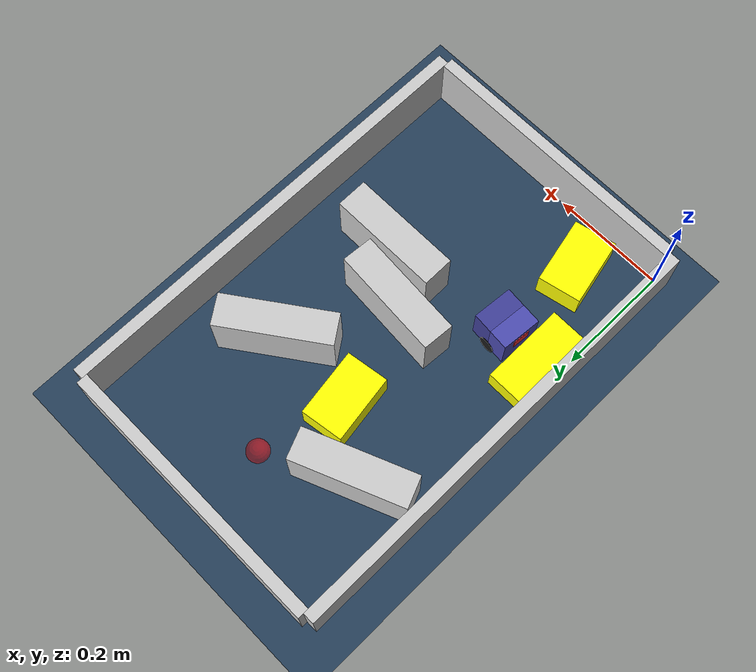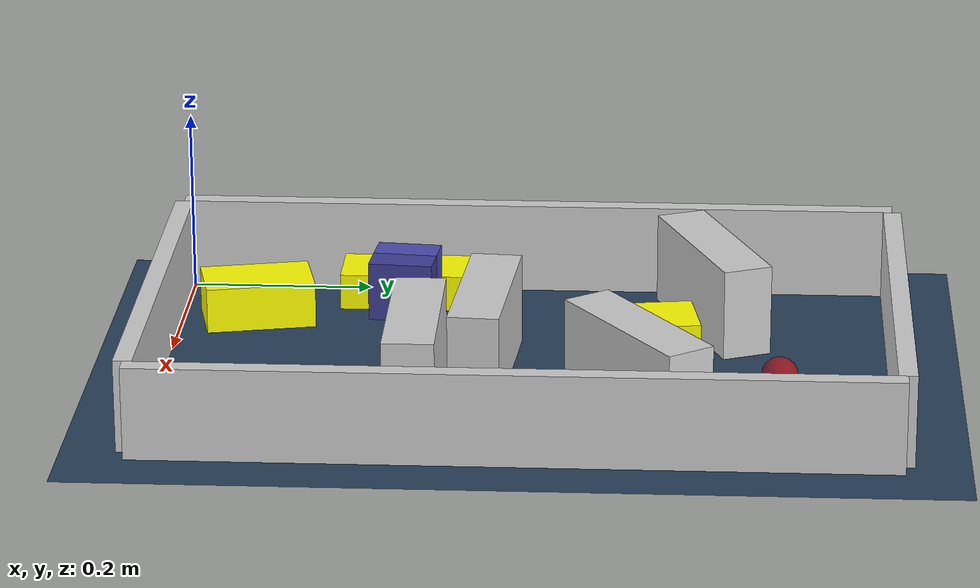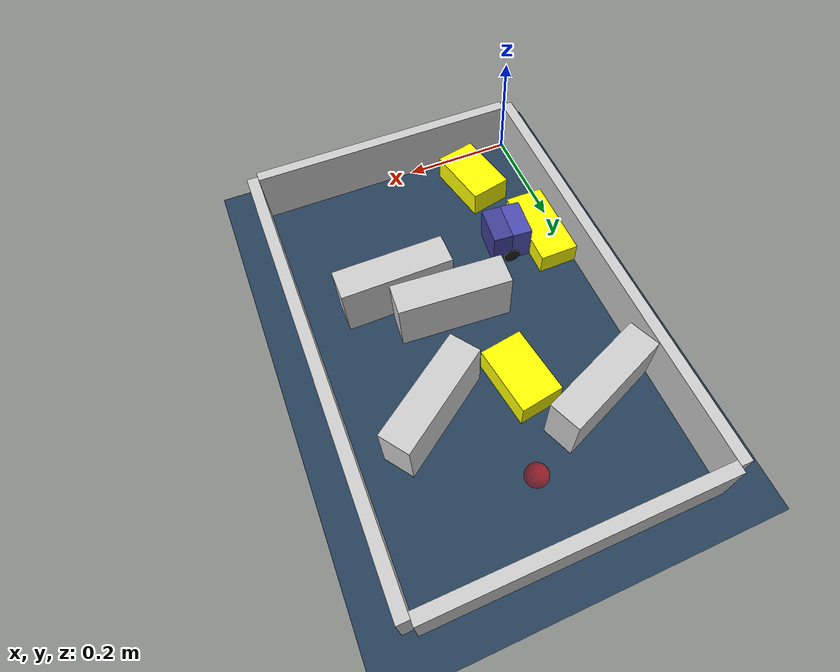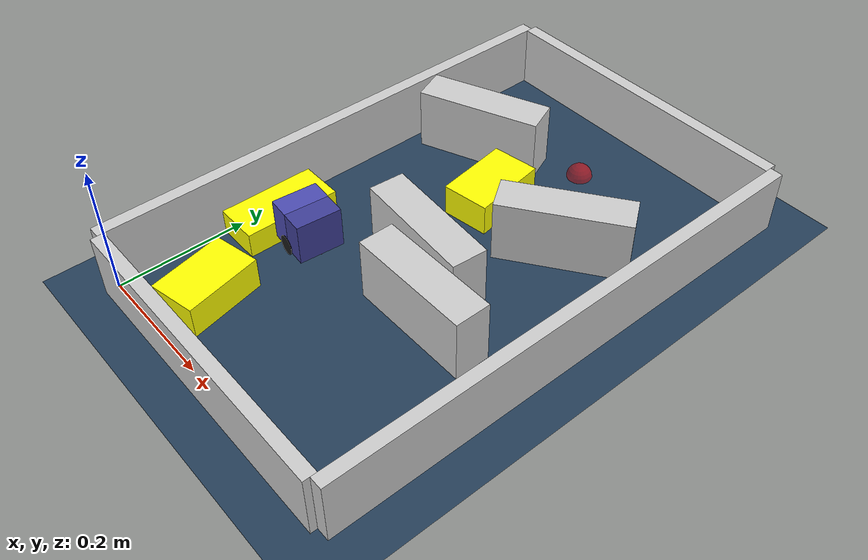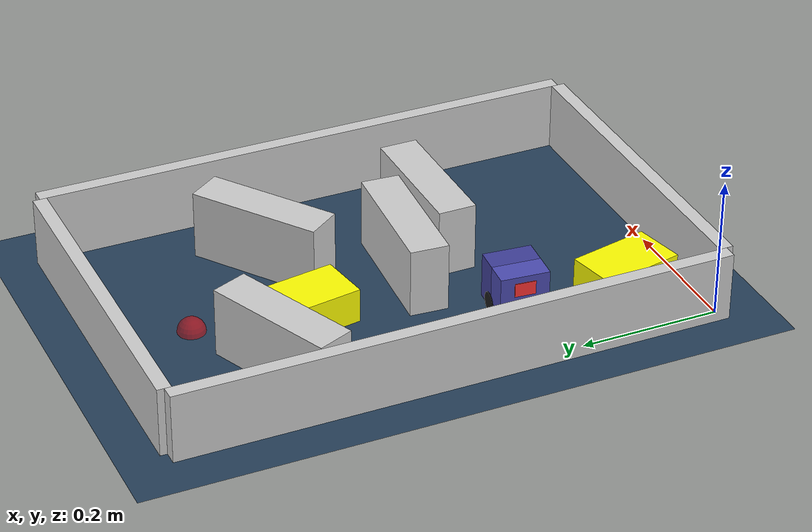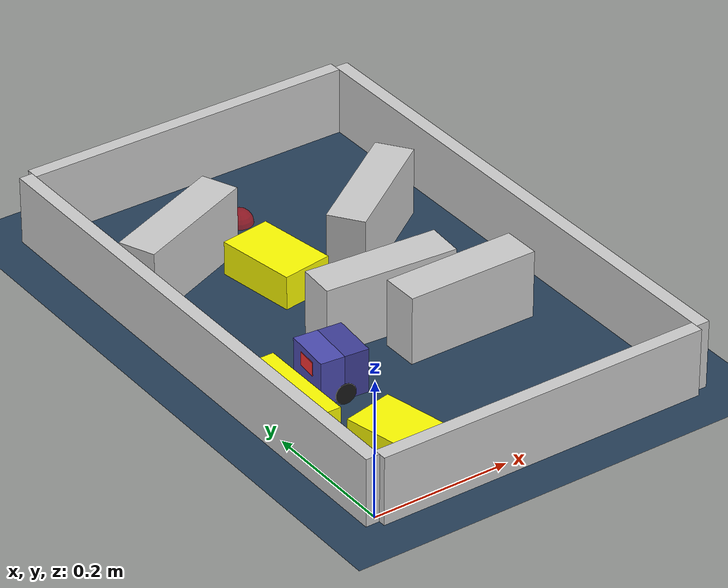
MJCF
<?xml version='1.0' encoding='utf-8'?>
<mujoco model="real_buildable">
  <compiler angle="degree" />
  <option timestep="0.002" integrator="implicitfast" iterations="100" cone="elliptic" />
  <default>
    <geom density="1" />
  </default>
  <asset>
    <texture builtin="gradient" height="3072" rgb1="0.3 0.5 0.7" rgb2="0 0 0" type="skybox" width="512" />
    <texture builtin="checker" height="300" mark="edge" markrgb="0.8 0.8 0.8" name="groundplane" rgb1="0.2 0.3 0.4" rgb2="0.1 0.2 0.3" type="2d" width="300" />
    <material name="groundplane" reflectance="0.2" texrepeat="5 5" texture="groundplane" texuniform="true" />
  </asset>
  <worldbody>
    <light dir="0 0 -1" directional="true" pos="0 0 1.5" />
    <geom name="floor" type="plane" condim="4" friction="0.5 0.005 0.001" material="groundplane" size="0 0 0.05" />
    <body name="walls">
      <geom name="wall_boundary_left" type="box" condim="4" friction="1.0 0.005 0.0001" rgba="0.8 0.8 0.8 1" pos="-0.010000 0.387500 0.050000" euler="0 0 0.000000" size="0.010000 0.397500 0.050000" />
      <geom name="wall_boundary_right" type="box" condim="4" friction="1.0 0.005 0.0001" rgba="0.8 0.8 0.8 1" pos="0.500000 0.387500 0.050000" euler="0 0 0.000000" size="0.010000 0.397500 0.050000" />
      <geom name="wall_boundary_bottom" type="box" condim="4" friction="1.0 0.005 0.0001" rgba="0.8 0.8 0.8 1" pos="0.245000 -0.010000 0.050000" euler="0 0 0.000000" size="0.245000 0.010000 0.050000" />
      <geom name="wall_boundary_top" type="box" condim="4" friction="1.0 0.005 0.0001" rgba="0.8 0.8 0.8 1" pos="0.245000 0.785000 0.050000" euler="0 0 0.000000" size="0.245000 0.010000 0.050000" />
      <geom name="wall_inner_1" type="box" condim="4" friction="1.0 0.005 0.0001" rgba="0.8 0.8 0.8 1" pos="0.330921 0.274736 0.050000" euler="0 0 180.201922" size="0.097500 0.027500 0.050000" />
      <geom name="wall_inner_2" type="box" condim="4" friction="1.0 0.005 0.0001" rgba="0.8 0.8 0.8 1" pos="0.254265 0.344561 0.050000" euler="0 0 175.864176" size="0.097500 0.027500 0.050000" />
      <geom name="wall_inner_3" type="box" condim="4" friction="1.0 0.005 0.0001" rgba="0.8 0.8 0.8 1" pos="0.102000 0.587000 0.050000" euler="0 0 22.700000" size="0.097500 0.027500 0.050000" />
      <geom name="wall_inner_4" type="box" condim="4" friction="1.0 0.005 0.0001" rgba="0.8 0.8 0.8 1" pos="0.355000 0.510000 0.050000" euler="0 0 35.400000" size="0.097500 0.027500 0.050000" />
    </body>
    <body name="car" pos="0.10823490648739467 0.24762698022042665 0.01" quat="0.044884230383453433 0 0 0.99899219509608039">
      <freejoint name="car_freejoint" />
      <inertial pos="0 0 0.0375" mass="0.35" diaginertia="0.000266 0.000266 0.000286" />
      <geom name="front_chassis_collision" type="box" pos="0.0175 0 0.0375" size="0.0175 0.035 0.0325" rgba="0.3 0.3 0.7 1" />
      <geom name="rear_chassis_collision" type="box" pos="-0.0175 0 0.0375" size="0.0175 0.035 0.0325" rgba="0.25 0.25 0.6 1" />
      <geom name="front_marker" type="box" pos="0.034 0 0.0505" size="0.002 0.015 0.01" rgba="1 0.2 0.2 1" contype="0" conaffinity="0" />
      <body name="rear_support_body" pos="-0.03 0 0.0025">
        <joint name="rear_caster_joint" type="ball" damping="0.0001" />
        <inertial pos="0 0 0" mass="0.025" diaginertia="0.000001 0.000001 0.000001" />
        <geom name="rear_support" type="sphere" pos="0 0 0" size="0.0025" friction="0 0 0" rgba="0.7 0.1 0.1 1" />
      </body>
      <body name="front_support_body" pos="0.03 0 0.0025">
        <joint name="front_caster_joint" type="ball" damping="0.0001" />
        <inertial pos="0 0 0" mass="0.025" diaginertia="0.000001 0.000001 0.000001" />
        <geom name="front_support" type="sphere" pos="0 0 0" size="0.0025" friction="0 0 0" rgba="0.1 0.7 0.1 1" />
      </body>
      <body name="left_wheel" pos="0 0.0375 0.015">
        <inertial pos="0 0 0" mass="0.05" diaginertia="0.000003 0.000006 0.000003" />
        <joint name="left_wheel_joint" type="hinge" axis="0 1 0" damping="0.01" armature="0.0001" />
        <geom name="left_wheel_collision" type="cylinder" size="0.015 0.0005" euler="90 0 0" rgba="0.1 0.1 0.1 1" />
      </body>
      <body name="right_wheel" pos="0 -0.0375 0.015">
        <inertial pos="0 0 0" mass="0.05" diaginertia="0.000003 0.000006 0.000003" />
        <joint name="right_wheel_joint" type="hinge" axis="0 1 0" damping="0.01" armature="0.0001" />
        <geom name="right_wheel_collision" type="cylinder" size="0.015 0.0005" euler="90 0 0" rgba="0.1 0.1 0.1 1" />
      </body>
    </body>
    <body name="obstacle_0_movable">
      <geom name="obstacle_0_movable" condim="4" pos="0.034996289173982065 0.24679550133704564 0.02" friction="1 0.005 0.0001" rgba="1 1 0 1" size="0.035000 0.075000 0.020000" type="box" mass="0.1" quat="0.00011213645408034219 0 0 0.99999999371270787" />
      <joint type="free" />
    </body>
    <body name="obstacle_1_movable">
      <geom name="obstacle_1_movable" condim="4" pos="0.20299999999999982 0.5099999999999999 0.025000000000000001" friction="1 0.005 0.0001" rgba="1 1 0 1" size="0.037500 0.060000 0.025000" type="box" mass="0.1" quat="0.99698542260390877 0 0 0.077589091471065977" />
      <joint type="free" />
    </body>
    <body name="obstacle_2_movable">
      <geom name="obstacle_2_movable" condim="4" pos="0.10239700000000015 0.083027000000000031 0.025000000000000001" friction="1 0.005 0.0001" rgba="1 1 0 1" size="0.037500 0.060000 0.025000" type="box" mass="0.1" quat="0.99419365258594894 0 0 0.10760567437551595" />
      <joint type="free" />
    </body>
    <site name="goal" type="sphere" pos="0.245000 0.660000 0.0" size="0.02" rgba="1 0 0 0.5" />
  </worldbody>
  <actuator>
    <velocity name="left_wheel_drive" joint="left_wheel_joint" ctrlrange="-25 25" kv="0.75" forcerange="-0.5 0.5" />
    <velocity name="right_wheel_drive" joint="right_wheel_joint" ctrlrange="-25 25" kv="0.75" forcerange="-0.5 0.5" />
  </actuator>
</mujoco>
